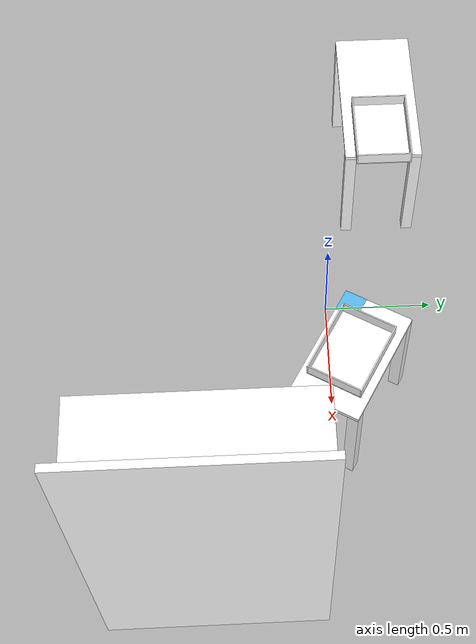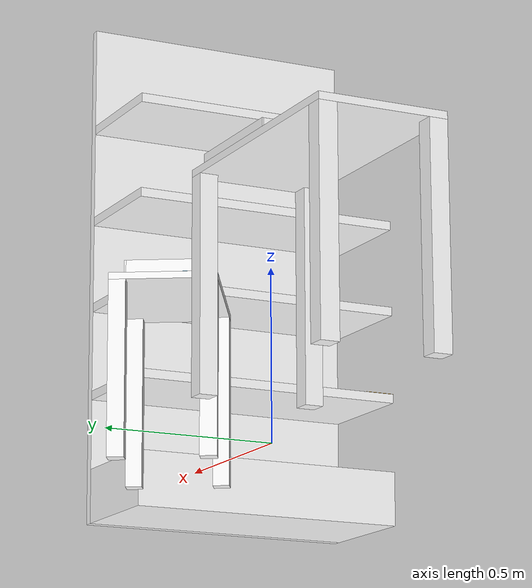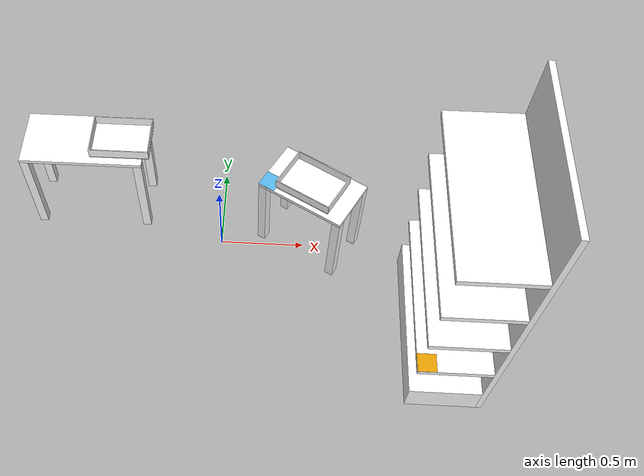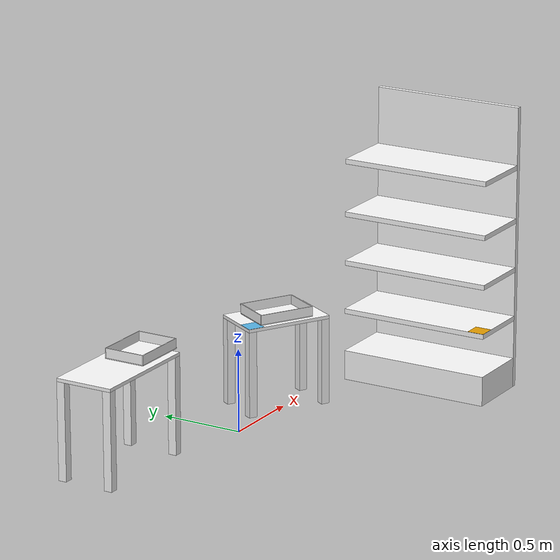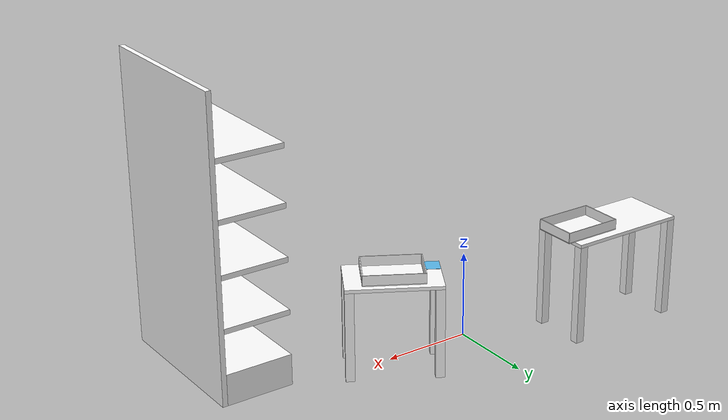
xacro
<?xml version="1.0"?>
<robot xmlns:xacro="http://www.ros.org/wiki/xacro"
       name="ceatec_base_scene_environment">

  <xacro:property name="workspace_width"	value="3.000"/>
  <xacro:property name="workspace_length"	value="2.000"/>
  <xacro:property name="a_table_width"		value="0.530"/>
  <xacro:property name="a_table_length"		value="0.315"/>
  <xacro:property name="a_table_height"		value="0.540"/>
  <xacro:property name="b_table_width"		value="0.700"/>
  <xacro:property name="b_table_length"		value="0.350"/>
  <xacro:property name="b_table_height"		value="0.600"/>
  <xacro:property name="cabinet_width"		value="0.925"/>
  <xacro:property name="cabinet_length"		value="0.420"/>
  <xacro:property name="cabinet_base_height"	value="0.180"/>
  <xacro:property name="cabinet_shelf1_height"	value="0.443"/>
  <xacro:property name="cabinet_shelf2_height"	value="0.743"/>
  <xacro:property name="cabinet_shelf3_height"	value="1.043"/>
  <xacro:property name="cabinet_shelf4_height"	value="1.366"/>
  <xacro:property name="cabinet_back_height"	value="1.711"/>
  <xacro:property name="tray_width"		value="0.340"/>
  <xacro:property name="tray_length"		value="0.250"/>
  <xacro:property name="tray_height"		value="0.062"/>

  <!-- Main workspace -->
  <link name="ground"/>

  <!-- a_table -->
  <xacro:include filename="$(find aist_scene_description)/urdf/table.urdf.xacro"/>
  <xacro:table prefix="a_"
	       width="${a_table_width}"
	       length="${a_table_length}"
	       height="${a_table_height}"
	       parent="ground">
    <origin xyz="${workspace_width/2 - cabinet_length - 0.86}
		 ${0.6 - (workspace_length/2 - cabinet_width/2)}
		 0"
	    rpy="0 0 ${-pi/6}"/>
  </xacro:table>

  <!-- Frame to place trays on a_table -->
  <link name="a_tray_on_a_table" />
  <joint name="a_tray_on_a_table_joint" type="fixed">
    <parent link="a_table_top_origin_center" />
    <child  link="a_tray_on_a_table" />
    <origin xyz="0 ${-tray_length/2} 0" rpy="0 0 0" />
  </joint>
  <link name="b_tray_on_a_table" />
  <joint name="b_tray_on_a_table_joint" type="fixed">
    <parent link="a_table_top_origin_center" />
    <child  link="b_tray_on_a_table" />
    <origin xyz="0 ${-tray_length/2} 0" rpy="0 0 0" />
  </joint>

  <link name="a_table_standpoint"/>
  <joint name="a_table_standpoint_joint" type="fixed">
    <parent link="a_table_leg0" />
    <child  link="a_table_standpoint" />
    <origin xyz="${a_table_width/2} -0.7 0" rpy="0 0 ${pi/2}" />
  </joint>

  <!-- b_table -->
  <xacro:table prefix="b_"
	       width="${b_table_width}"
	       length="${b_table_length}"
	       height="${b_table_height}"
	       parent="ground">
    <origin xyz="${-b_table_width/2-(1.0-0.2)}
		 ${-b_table_length/2+(0.78-0.5)}
		 0"
	    rpy="0 0 0"/>
  </xacro:table>

  <!-- Frame to place trays on b_table -->
  <link name="a_tray_on_b_table" />
  <joint name="a_tray_on_b_table_joint" type="fixed">
    <parent link="b_table_top_origin_center" />
    <child  link="a_tray_on_b_table" />
    <origin xyz="${-tray_width/2 - 0.05} ${-tray_length/2} 0" rpy="0 0 0" />
  </joint>
  <link name="b_tray_on_b_table" />
  <joint name="b_tray_on_b_table_joint" type="fixed">
    <parent link="b_table_top_origin_center" />
    <child  link="b_tray_on_b_table" />
    <origin xyz="${tray_width/2 + 0.05} ${-tray_length/2} 0" rpy="0 0 0" />
  </joint>

  <link name="b_table_standpoint"/>
  <joint name="b_table_standpoint_joint" type="fixed">
    <parent link="b_table_leg0" />
    <child  link="b_table_standpoint" />
    <origin xyz="${b_table_width/2} -0.7 0" rpy="0 0 ${pi/2}" />
  </joint>

  <!-- Cabinet -->
  <xacro:include filename="$(find aist_scene_description)/urdf/cabinet.urdf.xacro"/>
  <xacro:cabinet prefix="a_"
		 width="${cabinet_width}"
		 length="${cabinet_length}"
		 base_height="${cabinet_base_height}"
		 shelf1_height="${cabinet_shelf1_height}"
		 shelf2_height="${cabinet_shelf2_height}"
		 shelf3_height="${cabinet_shelf3_height}"
		 shelf4_height="${cabinet_shelf4_height}"
		 back_height="${cabinet_back_height}" parent="ground">
    <origin xyz="${workspace_width/2   - cabinet_length}
		 ${-workspace_length/2 + cabinet_width}
		 0"
	    rpy="0 0 ${-pi/2}"/>
  </xacro:cabinet>

  <link name="a_cabinet_standpoint"/>
  <joint name="a_cabinet_standpoint_joint" type="fixed">
    <parent link="a_cabinet_base" />
    <child  link="a_cabinet_standpoint" />
    <origin xyz="${cabinet_width/2} -0.9 0" rpy="0 0 ${pi/2}" />
  </joint>

  <!-- Frames to place items on cabinet -->
  <link name="a_item_in_cabinet"/>
  <joint name="a_item_in_cabinet_joint" type="fixed">
    <parent link="a_cabinet_shelf1_origin" />
    <child  link="a_item_in_cabinet" />
    <origin xyz="${cabinet_width/12} 0.1 0.08" rpy="${pi/2} ${-pi/2} 0"/>
  </joint>
  <link name="b_item_in_cabinet"/>
  <joint name="b_item_in_cabinet_joint" type="fixed">
    <parent link="a_item_in_cabinet" />
    <child  link="b_item_in_cabinet" />
    <origin xyz="0 ${-cabinet_width/6} 0" rpy="0 0 0" />
  </joint>
  <link name="c_item_in_cabinet"/>
  <joint name="c_item_in_cabinet_joint" type="fixed">
    <parent link="b_item_in_cabinet" />
    <child  link="c_item_in_cabinet" />
    <origin xyz="0 ${-cabinet_width/6} 0" rpy="0 0 0" />
  </joint>
  <link name="d_item_in_cabinet"/>
  <joint name="d_item_in_cabinet_joint" type="fixed">
    <parent link="c_item_in_cabinet" />
    <child  link="d_item_in_cabinet" />
    <origin xyz="0 ${-cabinet_width/6} 0" rpy="0 0 0" />
  </joint>
  <link name="e_item_in_cabinet"/>
  <joint name="e_item_in_cabinet_joint" type="fixed">
    <parent link="d_item_in_cabinet" />
    <child  link="e_item_in_cabinet" />
    <origin xyz="0 ${-cabinet_width/6} 0" rpy="0 0 0" />
  </joint>
  <link name="f_item_in_cabinet"/>
  <joint name="f_item_in_cabinet_joint" type="fixed">
    <parent link="e_item_in_cabinet" />
    <child  link="f_item_in_cabinet" />
    <origin xyz="0 ${-cabinet_width/6} 0" rpy="0 0 0" />
  </joint>

  <!-- AR markers -->
  <xacro:include filename="$(find aist_gazebo)/urdf/ar_marker.urdf.xacro"/>

  <xacro:ar_marker prefix="a_cabinet_" parent="a_cabinet_shelf1_origin"
		   marker_id="17" size="0.1" thickness="0.001">
    <origin xyz="${cabinet_width - 0.05} 0.05 0.001" rpy="0 0 0"/>
  </xacro:ar_marker>

  <xacro:ar_marker prefix="a_table_" parent="a_table_top_origin"
		   marker_id="26" size="0.1" thickness="0.001">
    <origin xyz="0.05 0.05 0.001" rpy="0 0 0"/>
  </xacro:ar_marker>

  <!-- Trays -->
  <xacro:include filename="$(find aist_scene_description)/urdf/tray.urdf.xacro"/>
  <xacro:tray prefix="a_"
	      width="${tray_width}"
	      length="${tray_length}"
	      height="${tray_height}"
	      parent="a_tray_on_a_table">
    <origin xyz="${-tray_width/2} 0 0" rpy="0 0 0"/>
  </xacro:tray>
  <xacro:tray prefix="b_"
	      width="${tray_width}"
	      length="${tray_length}"
	      height="${tray_height}"
	      parent="b_tray_on_b_table">
    <origin xyz="${-tray_width/2} 0 0" rpy="0 0 0"/>
  </xacro:tray>

  <!-- I would like to remove the "world" link definition, but
       apparently it is necessary for Gazebo -->
  <link name="world"/>
  <joint name="world_ground_joint" type="fixed">
    <parent link="world"/>
    <child  link="ground"/>
    <origin xyz="0 0 0" rpy="0 0 0"/>
  </joint>

</robot>

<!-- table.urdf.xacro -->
<robot xmlns:xacro="http://ros.org/wiki/xacro"
       name="table">

  <xacro:include filename="$(find aist_scene_description)/urdf/aist_box.urdf.xacro"/>

  <xacro:macro name="table"
	       params="prefix width length height parent *origin">

    <xacro:property name="table_thickness"	value="0.020" />
    <xacro:property name="table_leg_thickness"	value="0.050" />

    <xacro:aist_box name="${prefix}table_leg0"
		    width="${table_leg_thickness}"
		    length="${table_leg_thickness}"
		    height="${height - table_thickness}"
		    parent="${parent}">
      <xacro:insert_block name="origin"/>
    </xacro:aist_box>

    <xacro:aist_box name="${prefix}table_leg1"
		    width="${table_leg_thickness}"
		    length="${table_leg_thickness}"
		    height="${height - table_thickness}"
		    parent="${prefix}table_leg0">
      <origin xyz="${width - table_leg_thickness} 0 0" rpy="0 0 0"/>
    </xacro:aist_box>

    <xacro:aist_box name="${prefix}table_leg2"
		    width="${table_leg_thickness}"
		    length="${table_leg_thickness}"
		    height="${height - table_thickness}"
		    parent="${prefix}table_leg0">
      <origin xyz="0 ${length - table_leg_thickness} 0" rpy="0 0 0"/>
    </xacro:aist_box>

    <xacro:aist_box name="${prefix}table_leg3"
		    width="${table_leg_thickness}"
		    length="${table_leg_thickness}"
		    height="${height - table_thickness}"
		    parent="${prefix}table_leg0">
      <origin xyz="${width  - table_leg_thickness}
		   ${length - table_leg_thickness}
		   0"
	      rpy="0 0 0"/>
    </xacro:aist_box>

    <xacro:aist_box name="${prefix}table_top"
		    width="${width}"
		    length="${length}"
		    height="${table_thickness}"
		    parent="${prefix}table_leg0">
      <origin xyz="0 0 ${height - table_thickness}" rpy="0 0 0"/>
    </xacro:aist_box>

    <xacro:macro name="auxiliary_frame" params="parent framename *origin">
      <joint name="${parent}_${framename}" type="fixed">
	<parent link="${parent}" />
	<child link = "${parent}_${framename}"/>
	<xacro:insert_block name="origin"/>
      </joint>
      <link name="${parent}_${framename}"/>
    </xacro:macro>

    <xacro:auxiliary_frame parent="${prefix}table_top" framename="origin">
      <origin xyz="0 0 ${table_thickness}" rpy="0 0 0"/>
    </xacro:auxiliary_frame>

    <xacro:auxiliary_frame parent="${prefix}table_top_origin" framename="center">
      <origin xyz="${width/2} ${length/2} 0" rpy="0 0 0"/>
    </xacro:auxiliary_frame>

  </xacro:macro>
</robot>

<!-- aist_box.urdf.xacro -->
<robot xmlns:xacro="http://www.ros.org/wiki/xacro">

  <xacro:macro name="aist_box"
	       params="name width length height parent *origin">
    <!-- This creates a box with the origin in the bottom corner, fixed to the world link. -->

    <link name="${name}">
      <!-- w is in x, l is in y, h is in z -->
      <visual>
        <origin xyz="${width/2} ${length/2} ${height/2}" rpy="0 0 0"/>
        <geometry>
          <box size="${width} ${length} ${height}"/>
        </geometry>
        <material name="Grey">
          <color rgba="1.0 1.0 1.0 1.0"/>
        </material>
      </visual>
      <collision>
        <origin xyz="${width/2} ${length/2} ${height/2}" rpy="0 0 0"/>
        <geometry>
          <box size="${width} ${length} ${height}"/>
        </geometry>
      </collision>

      <!-- This is required for Gazebo. -->
      <inertial>
        <mass value="1.0" />
        <inertia ixx="0.0" ixy="0.0" ixz="0.0"
          iyy="0.0" iyz="0.0"
          izz="0.0" />
      </inertial>
    </link>
    <gazebo reference="${name}">
      <material>Gazebo/White</material>
    </gazebo>

    <joint name="${name}" type="fixed">
      <parent link="${parent}" />
      <child link = "${name}" />
      <xacro:insert_block name="origin"/>
    </joint>
  </xacro:macro>
</robot>

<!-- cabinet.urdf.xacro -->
<robot xmlns:xacro="http://ros.org/wiki/xacro"
       name="cabinet">
  <xacro:include filename="$(find aist_scene_description)/urdf/aist_box.urdf.xacro"/>

  <xacro:macro name="cabinet"
	       params="prefix width length base_height
		       shelf1_height shelf2_height shelf3_height shelf4_height
		       back_height parent *origin">

    <xacro:property name="thickness"	value="0.030" />

    <xacro:aist_box name="${prefix}cabinet_base"
		    width="${width}"
		    length="${length - thickness}"
		    height="${base_height}"
		    parent="${parent}">
      <xacro:insert_block name="origin"/>
    </xacro:aist_box>

    <xacro:aist_box name="${prefix}cabinet_back"
		    width="${width}"
		    length="${thickness}"
		    height="${back_height}"
		    parent="${prefix}cabinet_base">
      <origin xyz="0 ${length - thickness} 0" rpy="0 0 0"/>
    </xacro:aist_box>

    <xacro:aist_box name="${prefix}cabinet_shelf1"
		    width="${width}"
		    length="${length - thickness}"
		    height="${thickness}"
		    parent="${prefix}cabinet_base">
      <origin xyz="0 0 ${shelf1_height - thickness}" rpy="0 0 0"/>
    </xacro:aist_box>

    <xacro:aist_box name="${prefix}cabinet_shelf2"
		    width="${width}"
		    length="${length - thickness}"
		    height="${thickness}"
		    parent="${prefix}cabinet_base">
      <origin xyz="0 0 ${shelf2_height - thickness}" rpy="0 0 0"/>
    </xacro:aist_box>

    <xacro:aist_box name="${prefix}cabinet_shelf3"
		    width="${width}"
		    length="${length - thickness}"
		    height="${thickness}"
		    parent="${prefix}cabinet_base">
      <origin xyz="0 0 ${shelf3_height - thickness}" rpy="0 0 0"/>
    </xacro:aist_box>

    <xacro:aist_box name="${prefix}cabinet_shelf4"
		    width="${width}"
		    length="${length - thickness}"
		    height="${thickness}"
		    parent="${prefix}cabinet_base">
      <origin xyz="0 0 ${shelf4_height - thickness}" rpy="0 0 0"/>
    </xacro:aist_box>

    <xacro:macro name="auxiliary_frame" params="parent framename *origin">
      <joint name="${parent}_${framename}" type="fixed">
	<parent link="${parent}" />
	<child link = "${parent}_${framename}"/>
	<xacro:insert_block name="origin"/>
      </joint>
      <link name="${parent}_${framename}"/>
    </xacro:macro>

    <xacro:auxiliary_frame parent="${prefix}cabinet_base" framename="origin">
      <origin xyz="0 0 ${base_height}" rpy="0 0 0"/>
    </xacro:auxiliary_frame>

    <xacro:auxiliary_frame parent="${prefix}cabinet_base_origin"
			   framename="center">
      <origin xyz="${width/2} ${(length - thickness)/2} 0" rpy="0 0 0"/>
    </xacro:auxiliary_frame>

    <xacro:auxiliary_frame parent="${prefix}cabinet_shelf1" framename="origin">
      <origin xyz="0 0 ${thickness}" rpy="0 0 0"/>
    </xacro:auxiliary_frame>

    <xacro:auxiliary_frame parent="${prefix}cabinet_shelf1_origin"
			   framename="center">
      <origin xyz="${width/2} ${(length - thickness)/2} 0" rpy="0 0 0"/>
    </xacro:auxiliary_frame>

    <xacro:auxiliary_frame parent="${prefix}cabinet_shelf2" framename="origin">
      <origin xyz="0 0 ${thickness}" rpy="0 0 0"/>
    </xacro:auxiliary_frame>

    <xacro:auxiliary_frame parent="${prefix}cabinet_shelf2_origin"
			   framename="center">
      <origin xyz="${width/2} ${(length - thickness)/2} 0" rpy="0 0 0"/>
    </xacro:auxiliary_frame>

  </xacro:macro>
</robot>

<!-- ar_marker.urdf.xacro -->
<robot name="ar_marker" xmlns:xacro="http://www.ros.org/wiki/xacro">

  <xacro:macro name="ar_marker" params="marker_id size thickness
					prefix parent *origin">

    <joint name="${prefix}ar_marker_joint" type="fixed">
      <parent link="${parent}" />
      <child link = "${prefix}ar_marker" />
      <xacro:insert_block name="origin" />
    </joint>

    <link name="${prefix}ar_marker">
      <visual name="${prefix}ar_marker_visual">
	<origin xyz="0 0 ${-thickness/2}" rpy="0 0 ${pi}"/>
        <geometry>
          <box size="${size} ${size} ${thickness}" />
        </geometry>
      </visual>
      <collision name="${prefix}ar_marker_collision">
	<origin xyz="0 0 ${-thickness/2}" rpy="0 0 ${pi}"/>
        <geometry>
          <box size="${size} ${size} ${thickness}" />
        </geometry>
      </collision>
    </link>

    <!-- For Gazebo, material of AR marker is defined in
         gazebo/media/material. You also need to export
         gazebo_media_path in package.xml. -->
    <gazebo reference="${prefix}ar_marker">
      <material>Aruco/marker${marker_id}</material>
    </gazebo>

  </xacro:macro>

</robot>

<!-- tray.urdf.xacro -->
<robot xmlns:xacro="http://ros.org/wiki/xacro"
       name="table">

  <xacro:include filename="$(find aist_scene_description)/urdf/aist_box.urdf.xacro"/>

  <xacro:macro name="tray"
	       params="prefix width length height parent *origin">

    <xacro:property name="tray_thickness"	value="0.005" />
    <xacro:property name="item_radius"		value="0.04" />

    <link name="${prefix}tray"/>
    <joint name="${prefix}tray_joint" type="floating">
      <parent link="${parent}" />
      <child  link="${prefix}tray" />
      <xacro:insert_block name="origin"/>
    </joint>

    <xacro:aist_box name="${prefix}tray_bottom"
		    width="${width}"
		    length="${length}"
		    height="${tray_thickness}"
		    parent="${parent}">
      <origin xyz="${-width/2} ${-tray_thickness/2} 0" rpy="0 0 0"/>
    </xacro:aist_box>

    <xacro:aist_box name="${prefix}tray_wall0"
		    width="${width}"
		    length="${tray_thickness}"
		    height="${height - tray_thickness}"
		    parent="${prefix}tray_bottom">
      <origin xyz="0 0 ${tray_thickness}" rpy="0 0 0"/>
    </xacro:aist_box>

    <xacro:aist_box name="${prefix}tray_wall1"
		    width="${tray_thickness}"
		    length="${length - 2*tray_thickness}"
		    height="${height - tray_thickness}"
		    parent="${prefix}tray_bottom">
      <origin xyz="0 ${tray_thickness} ${tray_thickness}" rpy="0 0 0"/>
    </xacro:aist_box>

    <xacro:aist_box name="${prefix}tray_wall2"
		    width="${width}"
		    length="${tray_thickness}"
		    height="${height - tray_thickness}"
		    parent="${prefix}tray_bottom">
      <origin xyz="0 ${length - tray_thickness} ${tray_thickness}" rpy="0 0 0"/>
    </xacro:aist_box>

    <xacro:aist_box name="${prefix}tray_wall3"
		    width="${tray_thickness}"
		    length="${length - 2*tray_thickness}"
		    height="${height - tray_thickness}"
		    parent="${prefix}tray_bottom">
      <origin xyz="${width - tray_thickness} ${tray_thickness} ${tray_thickness}"
	      rpy="0 0 0"/>
    </xacro:aist_box>

    <link name="b_item_on_${prefix}tray"/>
    <joint name="b_item_on_${prefix}tray_joint" type="fixed">
      <parent link ="${prefix}tray_bottom"/>
      <child  link="b_item_on_${prefix}tray"/>
      <origin xyz="${width/2}
		   ${length/2}
		   ${tray_thickness + item_radius}"
    	      rpy="0 0 ${pi/2}"/>
    </joint>

    <link name="a_item_on_${prefix}tray"/>
    <joint name="a_item_on_${prefix}tray_joint" type="fixed">
      <parent link ="b_item_on_${prefix}tray"/>
      <child  link="a_item_on_${prefix}tray"/>
      <origin xyz="0 ${width/3 + tray_thickness/2} 0" rpy="0 0 0"/>
    </joint>

    <link name="c_item_on_${prefix}tray"/>
    <joint name="c_item_on_${prefix}tray_joint" type="fixed">
      <parent link ="b_item_on_${prefix}tray"/>
      <child  link="c_item_on_${prefix}tray"/>
      <origin xyz="0 ${-width/3 - tray_thickness/2} 0" rpy="0 0 0"/>
    </joint>

    <link name="d_item_on_${prefix}tray"/>
    <joint name="d_item_on_${prefix}tray_joint" type="fixed">
      <parent link ="a_item_on_${prefix}tray"/>
      <child  link="d_item_on_${prefix}tray"/>
      <origin xyz="0 0 0" rpy="0 0 0"/>
    </joint>

    <link name="e_item_on_${prefix}tray"/>
    <joint name="e_item_on_${prefix}tray_joint" type="fixed">
      <parent link ="b_item_on_${prefix}tray"/>
      <child  link="e_item_on_${prefix}tray"/>
      <origin xyz="0 0 0" rpy="0 0 0"/>
    </joint>

    <link name="f_item_on_${prefix}tray"/>
    <joint name="f_item_on_${prefix}tray_joint" type="fixed">
      <parent link ="c_item_on_${prefix}tray"/>
      <child  link="f_item_on_${prefix}tray"/>
      <origin xyz="0 0 0" rpy="0 0 0"/>
    </joint>

  </xacro:macro>
</robot>
